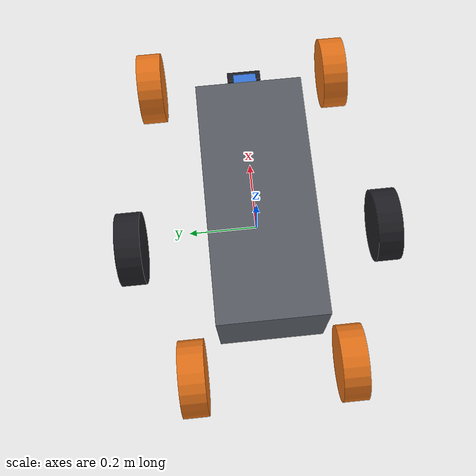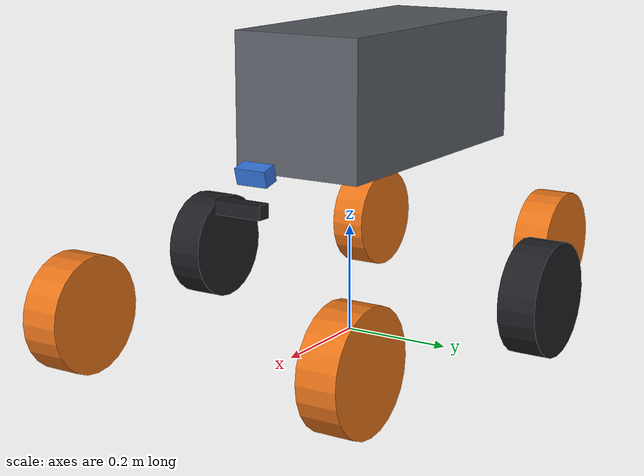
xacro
<?xml version="1.0"?>
<robot name="jetin_rover" xmlns:xacro="http://www.ros.org/wiki/xacro">

  <!-- ═══ 치수 (여기만 고치면 전체가 따라감) ═══════════════════════════════ -->
  <xacro:property name="x_front"    value="0.4377"/>
  <xacro:property name="x_mid"      value="-0.0603"/>  <!-- ⚠️ 축거중심에서 60 mm 뒤 -->
  <xacro:property name="x_rear"     value="-0.4377"/>
  <xacro:property name="y_front"    value="0.2725"/>   <!-- 앞 윤거 545 mm -->
  <xacro:property name="y_mid"      value="0.3595"/>   <!-- 중간 윤거 719 mm -->
  <xacro:property name="y_rear"     value="0.2125"/>   <!-- 뒤 윤거 425 mm -->
  <xacro:property name="wheel_r"    value="0.10356"/>
  <xacro:property name="wheel_w"    value="0.07"/>   <!-- 타이어 폭 70 mm -->

  <!-- as-built v2 CAD 실측 차체 프레임 박스. 3030+판재 기준 폭 250 mm,
       로커피벗 보스 포함 폭 470 mm, 전체 외곽 포락 1083 × 815 × 604 mm. -->
  <xacro:property name="body_l"     value="0.570"/>
  <xacro:property name="body_w"     value="0.250"/>
  <xacro:property name="body_h"     value="0.250"/>
  <xacro:property name="body_x"     value="-0.1038"/> <!-- 축거중점 기준 박스 중심 -->
  <xacro:property name="body_z"     value="0.4472"/>  <!-- 지면 위 박스 중심 -->

  <!-- ⚠️ 센서 마운트 = v2 CAD 에 센서 형상 없음 — 실측 게이트(2026-08-01 확인).
       imu_tilt_node 의 mount_* 기본값과 맞춰둠. -->
  <xacro:property name="l515_x"  value="0.30"/>
  <xacro:property name="l515_z"  value="0.35"/>
  <!-- 아래로 숙인 각(+ = 아래). REP-103 에서 pitch + 는 코가 내려가는 방향이다. -->
  <xacro:property name="l515_pitch_deg" value="15.0"/>
  <xacro:property name="d435i_x" value="0.34"/>
  <xacro:property name="d435i_z" value="0.30"/>
  <xacro:property name="us100_x" value="0.36"/>
  <xacro:property name="us100_z" value="0.15"/>

  <material name="grey">  <color rgba="0.35 0.37 0.40 1.0"/></material>
  <material name="dark">  <color rgba="0.12 0.12 0.14 1.0"/></material>
  <material name="orange"><color rgba="0.90 0.45 0.10 1.0"/></material>
  <material name="blue">  <color rgba="0.20 0.45 0.85 1.0"/></material>

  <!-- ═══ 차체 ═══════════════════════════════════════════════════════════ -->
  <link name="base_link">
    <visual>
      <origin xyz="${body_x} 0 ${body_z}"/>
      <geometry><box size="${body_l} ${body_w} ${body_h}"/></geometry>
      <material name="grey"/>
    </visual>
  </link>

  <xacro:macro name="wheel" params="name x y steerable">
    <!-- 조향륜만 조향 링크를 하나 끼운다. 고정륜은 base_link 에 바로 매단다. -->
    <xacro:if value="${steerable}">
      <link name="${name}_steer_link"/>
      <joint name="${name}_steer_joint" type="revolute">
        <parent link="base_link"/>
        <child  link="${name}_steer_link"/>
        <origin xyz="${x} ${y} ${wheel_r}"/>
        <axis xyz="0 0 1"/>
        <limit lower="${-pi/4}" upper="${pi/4}" effort="24" velocity="1.0"/>
      </joint>
    </xacro:if>

    <link name="${name}_wheel_link">
      <visual>
        <origin rpy="${pi/2} 0 0"/>
        <geometry><cylinder radius="${wheel_r}" length="${wheel_w}"/></geometry>
        <material name="${'orange' if steerable else 'dark'}"/>
      </visual>
    </link>
    <joint name="${name}_wheel_joint" type="continuous">
      <!-- 조향륜은 조향링크에 매달리므로 그 원점이 이미 바퀴 위치 → 오프셋 0 -->
      <parent link="${name + '_steer_link' if steerable else 'base_link'}"/>
      <child  link="${name}_wheel_link"/>
      <origin xyz="${0 if steerable else x} ${0 if steerable else y} ${0 if steerable else wheel_r}"/>
      <axis xyz="0 1 0"/>
    </joint>
  </xacro:macro>

  <!-- 앞·뒤 4륜 = 조향(AK45-36, 주황) / 중간 2륜 = 고정(검정). 윤거는 열마다 다르다. -->
  <xacro:wheel name="front_left"  x="${x_front}" y="${ y_front}" steerable="true"/>
  <xacro:wheel name="front_right" x="${x_front}" y="${-y_front}" steerable="true"/>
  <xacro:wheel name="mid_left"    x="${x_mid}"   y="${ y_mid}"   steerable="false"/>
  <xacro:wheel name="mid_right"   x="${x_mid}"   y="${-y_mid}"   steerable="false"/>
  <xacro:wheel name="rear_left"   x="${x_rear}"  y="${ y_rear}"  steerable="true"/>
  <xacro:wheel name="rear_right"  x="${x_rear}"  y="${-y_rear}"  steerable="true"/>

  <!-- ═══ 센서 ═══════════════════════════════════════════════════════════ -->
  <!-- L515 = 파워트레인 자율 카메라 (RGB 레인 + depth + 내장 IMU BMI085) -->
  <link name="l515_link">
    <visual>
      <geometry><box size="0.03 0.06 0.03"/></geometry>
      <material name="blue"/>
    </visual>
  </link>
  <joint name="l515_mount" type="fixed">
    <parent link="base_link"/><child link="l515_link"/>
    <origin xyz="${l515_x} 0 ${l515_z}" rpy="0 ${l515_pitch_deg*pi/180} 0"/>
  </joint>

  <!-- depth 토픽의 frame_id. 광학 규약(x=오른쪽, y=아래, z=앞) — 표준 카메라 회전 -->
  <link name="l515_depth_optical_frame"/>
  <joint name="l515_optical" type="fixed">
    <parent link="l515_link"/><child link="l515_depth_optical_frame"/>
    <origin rpy="${-pi/2} 0 ${-pi/2}"/>
  </joint>

  <link name="l515_color_optical_frame"/>
  <joint name="l515_color_optical" type="fixed">
    <parent link="l515_link"/><child link="l515_color_optical_frame"/>
    <origin rpy="${-pi/2} 0 ${-pi/2}"/>
  </joint>

  <!-- D435i = 로봇팔 팀 전용 (우리는 /detected_objects 만 구독) -->
  <link name="d435i_link">
    <visual>
      <geometry><box size="0.025 0.09 0.025"/></geometry>
      <material name="dark"/>
    </visual>
  </link>
  <joint name="d435i_mount" type="fixed">
    <parent link="base_link"/><child link="d435i_link"/>
    <origin xyz="${d435i_x} 0 ${d435i_z}"/>
  </joint>

  <!-- US-100 = 독립 충돌 안전 -->
  <link name="us100_link"/>
  <joint name="us100_mount" type="fixed">
    <parent link="base_link"/><child link="us100_link"/>
    <origin xyz="${us100_x} 0 ${us100_z}"/>
  </joint>

</robot>
